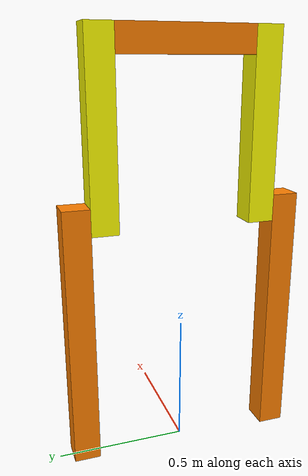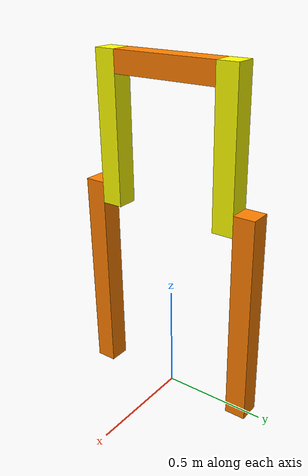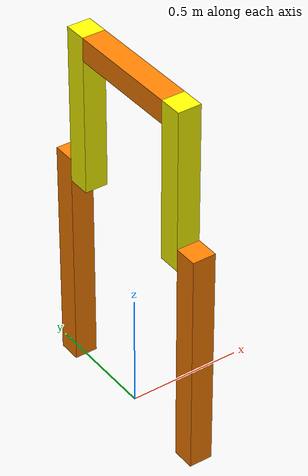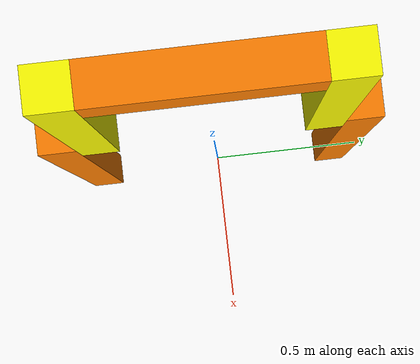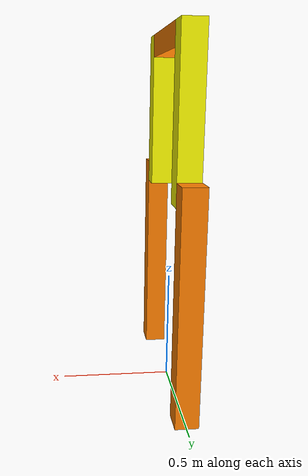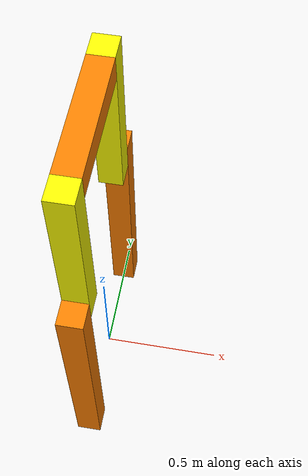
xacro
<?xml version="1.0"?>
<robot xmlns:xacro="http://ros.org/wiki/xacro" name="walker" >

  <!-- Constants for robot dimensions -->
  <xacro:property name="mass" value="1" /> <!-- arbitrary value for mass -->
  <xacro:property name="width" value="0.1" /> <!-- Square dimensions (widthxwidth) of beams -->
  <xacro:property name="shank_length" value="1" /> <!-- Link 1 -->
  <xacro:property name="thigh_length" value="0.7" /> <!-- Link 2 -->
  <xacro:property name="body_length" value="0.5" /> <!-- Link 3 -->
  <xacro:property name="axel_offset" value="0.05" /> <!-- Space btw top of beam and the each joint -->

  <xacro:arg name="use_sim" default="false" />

  <!-- Enable setting arguments from the launch file -->
  <xacro:arg name="use_fake_hardware" default="false" />
  <xacro:arg name="fake_sensor_commands" default="false" />
  <xacro:arg name="prefix" default="" />
  <xacro:arg name="slowdown" default="2.0" />

  <material name="orange">
    <color rgba="1 0.5 0 1"/>
  </material>

  <material name="yellow">
    <color rgba="1 1 0 1"/>
  </material>

  <material name="white">
    <color rgba="1 1 1 1"/>
  </material>

  <!-- Upper Boady -->
  <link name="base_link">
    <collision>
      <origin xyz="0 0 ${shank_length + thigh_length - 1.5*width}" rpy="0 0 0"/>
      <geometry>
        <box size="${width} ${body_length} ${width}"/>
      </geometry>
    </collision>

    <visual>
      <origin xyz="0 0 ${shank_length + thigh_length - 1.5*width}" rpy="0 0 0"/>
      <geometry>
        <box size="${width} ${body_length} ${width}"/>
      </geometry>
      <material name="orange"/>
    </visual>

    <inertial>
      <origin xyz="0 0 ${shank_length + thigh_length - 1.5*width}" rpy="0 0 0"/>
      <mass value="${mass}"/>
      <inertia
        ixx="${mass / 12.0 * (width*width + body_length*body_length)}" ixy="0.0" ixz="0.0"
        iyy="${mass / 12.0 * (width*width + width*width)}" iyz="0.0"
        izz="${mass / 12.0 * (width*width + body_length*body_length)}"/>
    </inertial>
  </link>

  <joint name="right_hip" type="continuous">
    <parent link="base_link"/>
    <child link="right_thigh"/>
    <origin xyz="0 ${-body_length/2 - width/2} ${shank_length + thigh_length - 1.5*width}" rpy="0 0 0"/>
    <axis xyz="0 1 0"/>
    <dynamics damping="0.7"/>
  </joint>

  <!-- Right Thigh -->
  <link name="right_thigh">
    <collision>
      <origin xyz="0 0 ${-thigh_length/2 + width/2}" rpy="0 0 0"/>
      <geometry>
        <box size="${width} ${width} ${thigh_length}"/>
      </geometry>
    </collision>

    <visual>
      <origin xyz="0 0 ${-thigh_length/2 + width/2}" rpy="0 0 0"/>
      <geometry>
        <box size="${width} ${width} ${thigh_length}"/>
      </geometry>
      <material name="yellow"/>
    </visual>

    <inertial>
      <origin xyz="0 0 ${-thigh_length/2 + width/2}" rpy="0 0 0"/>
      <mass value="${mass}"/>
      <inertia
        ixx="${mass / 12.0 * (width*width + thigh_length*thigh_length)}" ixy="0.0" ixz="0.0"
        iyy="${mass / 12.0 * (thigh_length*thigh_length + width*width)}" iyz="0.0"
        izz="${mass / 12.0 * (width*width + width*width)}"/>
    </inertial>
  </link>

  <joint name="left_hip" type="continuous">
    <parent link="base_link"/>
    <child link="left_thigh"/>
    <origin xyz="0 ${body_length/2 + width/2} ${shank_length + thigh_length - 1.5*width}" rpy="0 0 0"/>
    <axis xyz="0 1 0"/>
    <dynamics damping="0.7"/>
  </joint>

  <!-- Left Thigh -->
  <link name="left_thigh">
    <collision>
      <origin xyz="0 0 ${-thigh_length/2 + width/2}" rpy="0 0 0"/>
      <geometry>
        <box size="${width} ${width} ${thigh_length}"/>
      </geometry>
    </collision>

    <visual>
      <origin xyz="0 0 ${-thigh_length/2 + width/2}" rpy="0 0 0"/>
      <geometry>
        <box size="${width} ${width} ${thigh_length}"/>
      </geometry>
      <material name="yellow"/>
    </visual>

    <inertial>
      <origin xyz="0 0 ${-thigh_length/2 + width/2}" rpy="0 0 0"/>
      <mass value="${mass}"/>
      <inertia
        ixx="${mass / 12.0 * (width*width + thigh_length*thigh_length)}" ixy="0.0" ixz="0.0"
        iyy="${mass / 12.0 * (thigh_length*thigh_length + width*width)}" iyz="0.0"
        izz="${mass / 12.0 * (width*width + width*width)}"/>
    </inertial>
  </link>

  <joint name="right_knee" type="continuous">
    <parent link="right_thigh"/>
    <child link="right_shank"/>
    <origin xyz="0 ${-width} ${-thigh_length + width}" rpy="0 0 0"/>
    <axis xyz="0 1 0"/>
    <dynamics damping="0.7"/>
  </joint>

  <!-- Right Shank -->
  <link name="right_shank">
    <collision>
      <origin xyz="0 0 ${-shank_length/2 + width/2}" rpy="0 0 0"/>
      <geometry>
        <box size="${width} ${width} ${shank_length}"/>
      </geometry>
    </collision>

    <visual>
      <origin xyz="0 0 ${-shank_length/2 + width/2}" rpy="0 0 0"/>
      <geometry>
        <box size="${width} ${width} ${shank_length}"/>
      </geometry>
      <material name="orange"/>
    </visual>

    <inertial>
      <origin xyz="0 0 ${-shank_length/2 + width/2}" rpy="0 0 0"/>
      <mass value="${mass}"/>
      <inertia
        ixx="${mass / 12.0 * (width*width + shank_length*shank_length)}" ixy="0.0" ixz="0.0"
        iyy="${mass / 12.0 * (shank_length*shank_length + width*width)}" iyz="0.0"
        izz="${mass / 12.0 * (width*width + width*width)}"/>
    </inertial>
  </link>

  <joint name="left_knee" type="continuous">
    <parent link="left_thigh"/>
    <child link="left_shank"/>
    <origin xyz="0 ${width} ${-thigh_length + width}" rpy="0 0 0"/>
    <axis xyz="0 1 0"/>
    <dynamics damping="0.7"/>
  </joint>

  <!-- Left Shank -->
  <link name="left_shank">
    <collision>
      <origin xyz="0 0 ${-shank_length/2 + width/2}" rpy="0 0 0"/>
      <geometry>
        <box size="${width} ${width} ${shank_length}"/>
      </geometry>
    </collision>

    <visual>
      <origin xyz="0 0 ${-shank_length/2 + width/2}" rpy="0 0 0"/>
      <geometry>
        <box size="${width} ${width} ${shank_length}"/>
      </geometry>
      <material name="orange"/>
    </visual>

    <inertial>
      <origin xyz="0 0 ${-shank_length/2 + width/2}" rpy="0 0 0"/>
      <mass value="${mass}"/>
      <inertia
        ixx="${mass / 12.0 * (width*width + shank_length*shank_length)}" ixy="0.0" ixz="0.0"
        iyy="${mass / 12.0 * (shank_length*shank_length + width*width)}" iyz="0.0"
        izz="${mass / 12.0 * (width*width + width*width)}"/>
    </inertial>
  </link>

  <link name="imu">
    <inertial>
      <mass value="0.1"/>
      <inertia ixx="1.0" ixy="0" ixz="0" iyy="1.0" iyz="0" izz="1.0"/>
    </inertial>
  </link>
  <joint name="boady_to_imu" type="fixed">
    <origin xyz="0 0 ${shank_length + thigh_length - 1.5*width}"/>
    <parent link="base_link"/>
    <child link="imu"/>
    <dynamics damping="0.0" friction="0.0"/>
  </joint>

  <gazebo reference="imu">
    <sensor name="robot_imu_sensor" type="imu">
      <always_on>1</always_on>
      <update_rate>10.0</update_rate>
    </sensor>
  </gazebo>

</robot>
